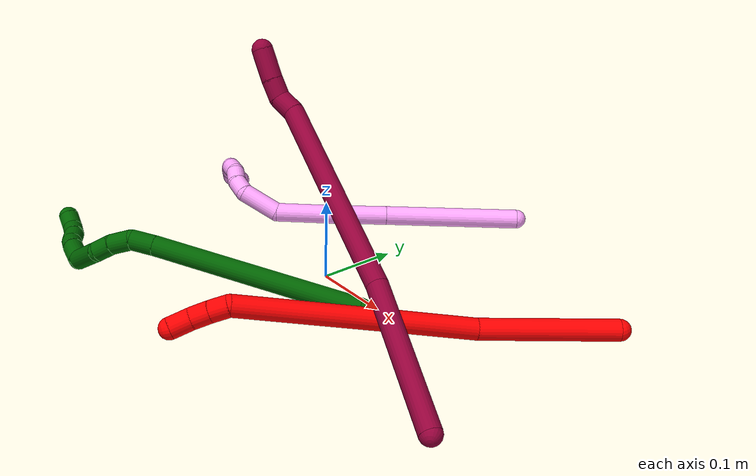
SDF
<sdf version="1.7">
 <world name="default">
  <model name="2">
   <static>0</static>
   <link name="2">
    <collision name="collision-cylinder-e_1_1_4">
     <pose>-0.025852 -0.006626 -0.073571 3.05177 -0.336645 -2.62448</pose>
     <geometry><cylinder><radius>0.0125</radius><length>0.156524</length></cylinder></geometry>
     <surface>
      <friction><ode><mu>1.16</mu><mu2>1.16</mu2><slip1>0</slip1><slip2>0</slip2></ode></friction>
      <contact><ode><kp>1e+06</kp><kd>1</kd><max_vel>0</max_vel><min_depth>0.001</min_depth></ode></contact>
     </surface>
    </collision>
    <visual name="visual-cylinder-e_1_1_4">
     <pose>-0.025852 -0.006626 -0.073571 3.05177 -0.336645 -2.62448</pose>
     <geometry><cylinder><radius>0.0125</radius><length>0.156524</length></cylinder></geometry>
     <material><ambient>1 0 0 1</ambient></material>
    </visual>
    <collision name="collision-cylinder-e_2_4_5">
     <pose>-0.06712 -0.030538 -0.196327 2.80364 -0.287523 -1.40728</pose>
     <geometry><cylinder><radius>0.0125</radius><length>0.108731</length></cylinder></geometry>
     <surface>
      <friction><ode><mu>1.16</mu><mu2>1.16</mu2><slip1>0</slip1><slip2>0</slip2></ode></friction>
      <contact><ode><kp>1e+06</kp><kd>1</kd><max_vel>0</max_vel><min_depth>0.001</min_depth></ode></contact>
     </surface>
    </collision>
    <visual name="visual-cylinder-e_2_4_5">
     <pose>-0.06712 -0.030538 -0.196327 2.80364 -0.287523 -1.40728</pose>
     <geometry><cylinder><radius>0.0125</radius><length>0.108731</length></cylinder></geometry>
     <material><ambient>1 0 0 1</ambient></material>
    </visual>
    <collision name="collision-cylinder-e_3_5_6">
     <pose>-0.105866 -0.074085 -0.320647 2.80533 -0.285122 -1.40394</pose>
     <geometry><cylinder><radius>0.0125</radius><length>0.165882</length></cylinder></geometry>
     <surface>
      <friction><ode><mu>1.16</mu><mu2>1.16</mu2><slip1>0</slip1><slip2>0</slip2></ode></friction>
      <contact><ode><kp>1e+06</kp><kd>1</kd><max_vel>0</max_vel><min_depth>0.001</min_depth></ode></contact>
     </surface>
    </collision>
    <visual name="visual-cylinder-e_3_5_6">
     <pose>-0.105866 -0.074085 -0.320647 2.80533 -0.285122 -1.40394</pose>
     <geometry><cylinder><radius>0.0125</radius><length>0.165882</length></cylinder></geometry>
     <material><ambient>1 0 0 1</ambient></material>
    </visual>
    <collision name="collision-cylinder-e_4_6_7">
     <pose>-0.130734 -0.098406 -0.40652 -2.96279 -0.140063 1.32799</pose>
     <geometry><cylinder><radius>0.0125</radius><length>0.022039</length></cylinder></geometry>
     <surface>
      <friction><ode><mu>1.16</mu><mu2>1.16</mu2><slip1>0</slip1><slip2>0</slip2></ode></friction>
      <contact><ode><kp>1e+06</kp><kd>1</kd><max_vel>0</max_vel><min_depth>0.001</min_depth></ode></contact>
     </surface>
    </collision>
    <visual name="visual-cylinder-e_4_6_7">
     <pose>-0.130734 -0.098406 -0.40652 -2.96279 -0.140063 1.32799</pose>
     <geometry><cylinder><radius>0.0125</radius><length>0.022039</length></cylinder></geometry>
     <material><ambient>1 0 0 1</ambient></material>
    </visual>
    <collision name="collision-cylinder-e_5_7_8">
     <pose>-0.133255 -0.094284 -0.427915 -2.93965 -0.090068 0.837036</pose>
     <geometry><cylinder><radius>0.0125</radius><length>0.021847</length></cylinder></geometry>
     <surface>
      <friction><ode><mu>1.16</mu><mu2>1.16</mu2><slip1>0</slip1><slip2>0</slip2></ode></friction>
      <contact><ode><kp>1e+06</kp><kd>1</kd><max_vel>0</max_vel><min_depth>0.001</min_depth></ode></contact>
     </surface>
    </collision>
    <visual name="visual-cylinder-e_5_7_8">
     <pose>-0.133255 -0.094284 -0.427915 -2.93965 -0.090068 0.837036</pose>
     <geometry><cylinder><radius>0.0125</radius><length>0.021847</length></cylinder></geometry>
     <material><ambient>1 0 0 1</ambient></material>
    </visual>
    <collision name="collision-cylinder-e_6_8_2">
     <pose>-0.133421 -0.091126 -0.450997 -3.06321 0.065439 -1.39115</pose>
     <geometry><cylinder><radius>0.0125</radius><length>0.024977</length></cylinder></geometry>
     <surface>
      <friction><ode><mu>1.16</mu><mu2>1.16</mu2><slip1>0</slip1><slip2>0</slip2></ode></friction>
      <contact><ode><kp>1e+06</kp><kd>1</kd><max_vel>0</max_vel><min_depth>0.001</min_depth></ode></contact>
     </surface>
    </collision>
    <visual name="visual-cylinder-e_6_8_2">
     <pose>-0.133421 -0.091126 -0.450997 -3.06321 0.065439 -1.39115</pose>
     <geometry><cylinder><radius>0.0125</radius><length>0.024977</length></cylinder></geometry>
     <material><ambient>1 0 0 1</ambient></material>
    </visual>
    <collision name="collision-sphere-2">
     <pose>-0.132604 -0.09015 -0.463421 0 -0 0</pose>
     <geometry><sphere><radius>0.0125</radius></sphere></geometry>
     <surface>
      <friction><ode><mu>1.16</mu><mu2>1.16</mu2><slip1>0</slip1><slip2>0</slip2></ode></friction>
      <contact><ode><kp>1e+06</kp><kd>1</kd><max_vel>0</max_vel><min_depth>0.001</min_depth></ode></contact>
     </surface>
    </collision>
    <visual name="visual-sphere-2">
     <pose>-0.132604 -0.09015 -0.463421 0 -0 0</pose>
     <geometry><sphere><radius>0.0125</radius></sphere></geometry>
     <material><ambient>1 0 0 1</ambient></material>
    </visual>
    <collision name="collision-sphere-4">
     <pose>-0.051703 -0.013253 -0.147143 0 -0 0</pose>
     <geometry><sphere><radius>0.0125</radius></sphere></geometry>
     <surface>
      <friction><ode><mu>1.16</mu><mu2>1.16</mu2><slip1>0</slip1><slip2>0</slip2></ode></friction>
      <contact><ode><kp>1e+06</kp><kd>1</kd><max_vel>0</max_vel><min_depth>0.001</min_depth></ode></contact>
     </surface>
    </collision>
    <visual name="visual-sphere-4">
     <pose>-0.051703 -0.013253 -0.147143 0 -0 0</pose>
     <geometry><sphere><radius>0.0125</radius></sphere></geometry>
     <material><ambient>1 0 0 1</ambient></material>
    </visual>
    <collision name="collision-sphere-1">
     <geometry><sphere><radius>0.0125</radius></sphere></geometry>
     <surface>
      <friction><ode><mu>1.16</mu><mu2>1.16</mu2><slip1>0</slip1><slip2>0</slip2></ode></friction>
      <contact><ode><kp>1e+06</kp><kd>1</kd><max_vel>0</max_vel><min_depth>0.001</min_depth></ode></contact>
     </surface>
    </collision>
    <visual name="visual-sphere-1">
     <geometry><sphere><radius>0.0125</radius></sphere></geometry>
     <material><ambient>1 0 0 1</ambient></material>
    </visual>
    <collision name="collision-sphere-8">
     <pose>-0.134237 -0.092102 -0.438574 0 -0 0</pose>
     <geometry><sphere><radius>0.0125</radius></sphere></geometry>
     <surface>
      <friction><ode><mu>1.16</mu><mu2>1.16</mu2><slip1>0</slip1><slip2>0</slip2></ode></friction>
      <contact><ode><kp>1e+06</kp><kd>1</kd><max_vel>0</max_vel><min_depth>0.001</min_depth></ode></contact>
     </surface>
    </collision>
    <visual name="visual-sphere-8">
     <pose>-0.134237 -0.092102 -0.438574 0 -0 0</pose>
     <geometry><sphere><radius>0.0125</radius></sphere></geometry>
     <material><ambient>1 0 0 1</ambient></material>
    </visual>
    <collision name="collision-sphere-5">
     <pose>-0.082537 -0.047823 -0.245512 0 -0 0</pose>
     <geometry><sphere><radius>0.0125</radius></sphere></geometry>
     <surface>
      <friction><ode><mu>1.16</mu><mu2>1.16</mu2><slip1>0</slip1><slip2>0</slip2></ode></friction>
      <contact><ode><kp>1e+06</kp><kd>1</kd><max_vel>0</max_vel><min_depth>0.001</min_depth></ode></contact>
     </surface>
    </collision>
    <visual name="visual-sphere-5">
     <pose>-0.082537 -0.047823 -0.245512 0 -0 0</pose>
     <geometry><sphere><radius>0.0125</radius></sphere></geometry>
     <material><ambient>1 0 0 1</ambient></material>
    </visual>
    <collision name="collision-sphere-6">
     <pose>-0.129195 -0.100347 -0.395782 0 -0 0</pose>
     <geometry><sphere><radius>0.0125</radius></sphere></geometry>
     <surface>
      <friction><ode><mu>1.16</mu><mu2>1.16</mu2><slip1>0</slip1><slip2>0</slip2></ode></friction>
      <contact><ode><kp>1e+06</kp><kd>1</kd><max_vel>0</max_vel><min_depth>0.001</min_depth></ode></contact>
     </surface>
    </collision>
    <visual name="visual-sphere-6">
     <pose>-0.129195 -0.100347 -0.395782 0 -0 0</pose>
     <geometry><sphere><radius>0.0125</radius></sphere></geometry>
     <material><ambient>1 0 0 1</ambient></material>
    </visual>
    <collision name="collision-sphere-7">
     <pose>-0.132272 -0.096466 -0.417257 0 -0 0</pose>
     <geometry><sphere><radius>0.0125</radius></sphere></geometry>
     <surface>
      <friction><ode><mu>1.16</mu><mu2>1.16</mu2><slip1>0</slip1><slip2>0</slip2></ode></friction>
      <contact><ode><kp>1e+06</kp><kd>1</kd><max_vel>0</max_vel><min_depth>0.001</min_depth></ode></contact>
     </surface>
    </collision>
    <visual name="visual-sphere-7">
     <pose>-0.132272 -0.096466 -0.417257 0 -0 0</pose>
     <geometry><sphere><radius>0.0125</radius></sphere></geometry>
     <material><ambient>1 0 0 1</ambient></material>
    </visual>
    <inertial>
     <pose>-0.076061 -0.046303 -0.231249 0 -0 0</pose>
     <mass>0.5</mass>
     <inertia>
      <ixx>-0.000819</ixx>
      <ixy>0</ixy>
      <ixz>0</ixz>
      <iyy>-0.000377</iyy>
      <iyz>0</iyz>
      <izz>0.000397</izz>
     </inertia>
    </inertial>
   </link>
   <pose>0.308834 0.171238 0.012985 -1.30212 0.455526 -0.282962</pose>
  </model>
  <model name="4">
   <static>0</static>
   <link name="4">
    <collision name="collision-cylinder-e_1_1_4">
     <pose>-0.053124 -0.054586 0.042837 0.905416 -0.653422 -0.326699</pose>
     <geometry><cylinder><radius>0.0125</radius><length>0.174777</length></cylinder></geometry>
     <surface>
      <friction><ode><mu>1.16</mu><mu2>1.16</mu2><slip1>0</slip1><slip2>0</slip2></ode></friction>
      <contact><ode><kp>1e+06</kp><kd>1</kd><max_vel>0</max_vel><min_depth>0.001</min_depth></ode></contact>
     </surface>
    </collision>
    <visual name="visual-cylinder-e_1_1_4">
     <pose>-0.053124 -0.054586 0.042837 0.905416 -0.653422 -0.326699</pose>
     <geometry><cylinder><radius>0.0125</radius><length>0.174777</length></cylinder></geometry>
     <material><ambient>1 0.65098 0.996078 1</ambient></material>
    </visual>
    <collision name="collision-cylinder-e_2_4_5">
     <pose>-0.127848 -0.131004 0.103231 0.893513 -0.656782 -0.323605</pose>
     <geometry><cylinder><radius>0.0125</radius><length>0.070752</length></cylinder></geometry>
     <surface>
      <friction><ode><mu>1.16</mu><mu2>1.16</mu2><slip1>0</slip1><slip2>0</slip2></ode></friction>
      <contact><ode><kp>1e+06</kp><kd>1</kd><max_vel>0</max_vel><min_depth>0.001</min_depth></ode></contact>
     </surface>
    </collision>
    <visual name="visual-cylinder-e_2_4_5">
     <pose>-0.127848 -0.131004 0.103231 0.893513 -0.656782 -0.323605</pose>
     <geometry><cylinder><radius>0.0125</radius><length>0.070752</length></cylinder></geometry>
     <material><ambient>1 0.65098 0.996078 1</ambient></material>
    </visual>
    <collision name="collision-cylinder-e_3_5_6">
     <pose>-0.173121 -0.178004 0.13987 0.922078 -0.64322 -0.328033</pose>
     <geometry><cylinder><radius>0.0125</radius><length>0.078941</length></cylinder></geometry>
     <surface>
      <friction><ode><mu>1.16</mu><mu2>1.16</mu2><slip1>0</slip1><slip2>0</slip2></ode></friction>
      <contact><ode><kp>1e+06</kp><kd>1</kd><max_vel>0</max_vel><min_depth>0.001</min_depth></ode></contact>
     </surface>
    </collision>
    <visual name="visual-cylinder-e_3_5_6">
     <pose>-0.173121 -0.178004 0.13987 0.922078 -0.64322 -0.328033</pose>
     <geometry><cylinder><radius>0.0125</radius><length>0.078941</length></cylinder></geometry>
     <material><ambient>1 0.65098 0.996078 1</ambient></material>
    </visual>
    <collision name="collision-cylinder-e_4_6_7">
     <pose>-0.211986 -0.224588 0.159493 1.54551 -0.616805 -0.602327</pose>
     <geometry><cylinder><radius>0.0125</radius><length>0.052526</length></cylinder></geometry>
     <surface>
      <friction><ode><mu>1.16</mu><mu2>1.16</mu2><slip1>0</slip1><slip2>0</slip2></ode></friction>
      <contact><ode><kp>1e+06</kp><kd>1</kd><max_vel>0</max_vel><min_depth>0.001</min_depth></ode></contact>
     </surface>
    </collision>
    <visual name="visual-cylinder-e_4_6_7">
     <pose>-0.211986 -0.224588 0.159493 1.54551 -0.616805 -0.602327</pose>
     <geometry><cylinder><radius>0.0125</radius><length>0.052526</length></cylinder></geometry>
     <material><ambient>1 0.65098 0.996078 1</ambient></material>
    </visual>
    <collision name="collision-cylinder-e_5_7_8">
     <pose>-0.227869 -0.257155 0.157932 1.7572 -0.060901 -0.07345</pose>
     <geometry><cylinder><radius>0.0125</radius><length>0.022735</length></cylinder></geometry>
     <surface>
      <friction><ode><mu>1.16</mu><mu2>1.16</mu2><slip1>0</slip1><slip2>0</slip2></ode></friction>
      <contact><ode><kp>1e+06</kp><kd>1</kd><max_vel>0</max_vel><min_depth>0.001</min_depth></ode></contact>
     </surface>
    </collision>
    <visual name="visual-cylinder-e_5_7_8">
     <pose>-0.227869 -0.257155 0.157932 1.7572 -0.060901 -0.07345</pose>
     <geometry><cylinder><radius>0.0125</radius><length>0.022735</length></cylinder></geometry>
     <material><ambient>1 0.65098 0.996078 1</ambient></material>
    </visual>
    <collision name="collision-cylinder-e_6_8_9">
     <pose>-0.225994 -0.277311 0.152054 1.96765 0.257071 0.38383</pose>
     <geometry><cylinder><radius>0.0125</radius><length>0.020195</length></cylinder></geometry>
     <surface>
      <friction><ode><mu>1.16</mu><mu2>1.16</mu2><slip1>0</slip1><slip2>0</slip2></ode></friction>
      <contact><ode><kp>1e+06</kp><kd>1</kd><max_vel>0</max_vel><min_depth>0.001</min_depth></ode></contact>
     </surface>
    </collision>
    <visual name="visual-cylinder-e_6_8_9">
     <pose>-0.225994 -0.277311 0.152054 1.96765 0.257071 0.38383</pose>
     <geometry><cylinder><radius>0.0125</radius><length>0.020195</length></cylinder></geometry>
     <material><ambient>1 0.65098 0.996078 1</ambient></material>
    </visual>
    <collision name="collision-cylinder-e_7_9_10">
     <pose>-0.220584 -0.295912 0.148544 1.54327 0.2879 0.280184</pose>
     <geometry><cylinder><radius>0.0125</radius><length>0.02002</length></cylinder></geometry>
     <surface>
      <friction><ode><mu>1.16</mu><mu2>1.16</mu2><slip1>0</slip1><slip2>0</slip2></ode></friction>
      <contact><ode><kp>1e+06</kp><kd>1</kd><max_vel>0</max_vel><min_depth>0.001</min_depth></ode></contact>
     </surface>
    </collision>
    <visual name="visual-cylinder-e_7_9_10">
     <pose>-0.220584 -0.295912 0.148544 1.54327 0.2879 0.280184</pose>
     <geometry><cylinder><radius>0.0125</radius><length>0.02002</length></cylinder></geometry>
     <material><ambient>1 0.65098 0.996078 1</ambient></material>
    </visual>
    <collision name="collision-cylinder-e_8_10_11">
     <pose>-0.210703 -0.310888 0.153491 0.854761 0.778671 0.369465</pose>
     <geometry><cylinder><radius>0.0125</radius><length>0.020045</length></cylinder></geometry>
     <surface>
      <friction><ode><mu>1.16</mu><mu2>1.16</mu2><slip1>0</slip1><slip2>0</slip2></ode></friction>
      <contact><ode><kp>1e+06</kp><kd>1</kd><max_vel>0</max_vel><min_depth>0.001</min_depth></ode></contact>
     </surface>
    </collision>
    <visual name="visual-cylinder-e_8_10_11">
     <pose>-0.210703 -0.310888 0.153491 0.854761 0.778671 0.369465</pose>
     <geometry><cylinder><radius>0.0125</radius><length>0.020045</length></cylinder></geometry>
     <material><ambient>1 0.65098 0.996078 1</ambient></material>
    </visual>
    <collision name="collision-cylinder-e_9_11_12">
     <pose>-0.196104 -0.320436 0.163224 0.689771 0.857123 0.325362</pose>
     <geometry><cylinder><radius>0.0125</radius><length>0.02</length></cylinder></geometry>
     <surface>
      <friction><ode><mu>1.16</mu><mu2>1.16</mu2><slip1>0</slip1><slip2>0</slip2></ode></friction>
      <contact><ode><kp>1e+06</kp><kd>1</kd><max_vel>0</max_vel><min_depth>0.001</min_depth></ode></contact>
     </surface>
    </collision>
    <visual name="visual-cylinder-e_9_11_12">
     <pose>-0.196104 -0.320436 0.163224 0.689771 0.857123 0.325362</pose>
     <geometry><cylinder><radius>0.0125</radius><length>0.02</length></cylinder></geometry>
     <material><ambient>1 0.65098 0.996078 1</ambient></material>
    </visual>
    <collision name="collision-cylinder-e_10_12_2">
     <pose>-0.178605 -0.325483 0.16899 0.887547 1.45705 0.802352</pose>
     <geometry><cylinder><radius>0.0125</radius><length>0.020009</length></cylinder></geometry>
     <surface>
      <friction><ode><mu>1.16</mu><mu2>1.16</mu2><slip1>0</slip1><slip2>0</slip2></ode></friction>
      <contact><ode><kp>1e+06</kp><kd>1</kd><max_vel>0</max_vel><min_depth>0.001</min_depth></ode></contact>
     </surface>
    </collision>
    <visual name="visual-cylinder-e_10_12_2">
     <pose>-0.178605 -0.325483 0.16899 0.887547 1.45705 0.802352</pose>
     <geometry><cylinder><radius>0.0125</radius><length>0.020009</length></cylinder></geometry>
     <material><ambient>1 0.65098 0.996078 1</ambient></material>
    </visual>
    <collision name="collision-sphere-2">
     <pose>-0.168665 -0.326363 0.169707 0 -0 0</pose>
     <geometry><sphere><radius>0.0125</radius></sphere></geometry>
     <surface>
      <friction><ode><mu>1.16</mu><mu2>1.16</mu2><slip1>0</slip1><slip2>0</slip2></ode></friction>
      <contact><ode><kp>1e+06</kp><kd>1</kd><max_vel>0</max_vel><min_depth>0.001</min_depth></ode></contact>
     </surface>
    </collision>
    <visual name="visual-sphere-2">
     <pose>-0.168665 -0.326363 0.169707 0 -0 0</pose>
     <geometry><sphere><radius>0.0125</radius></sphere></geometry>
     <material><ambient>1 0.65098 0.996078 1</ambient></material>
    </visual>
    <collision name="collision-sphere-12">
     <pose>-0.188544 -0.324602 0.168273 0 -0 0</pose>
     <geometry><sphere><radius>0.0125</radius></sphere></geometry>
     <surface>
      <friction><ode><mu>1.16</mu><mu2>1.16</mu2><slip1>0</slip1><slip2>0</slip2></ode></friction>
      <contact><ode><kp>1e+06</kp><kd>1</kd><max_vel>0</max_vel><min_depth>0.001</min_depth></ode></contact>
     </surface>
    </collision>
    <visual name="visual-sphere-12">
     <pose>-0.188544 -0.324602 0.168273 0 -0 0</pose>
     <geometry><sphere><radius>0.0125</radius></sphere></geometry>
     <material><ambient>1 0.65098 0.996078 1</ambient></material>
    </visual>
    <collision name="collision-sphere-11">
     <pose>-0.203664 -0.316271 0.158174 0 -0 0</pose>
     <geometry><sphere><radius>0.0125</radius></sphere></geometry>
     <surface>
      <friction><ode><mu>1.16</mu><mu2>1.16</mu2><slip1>0</slip1><slip2>0</slip2></ode></friction>
      <contact><ode><kp>1e+06</kp><kd>1</kd><max_vel>0</max_vel><min_depth>0.001</min_depth></ode></contact>
     </surface>
    </collision>
    <visual name="visual-sphere-11">
     <pose>-0.203664 -0.316271 0.158174 0 -0 0</pose>
     <geometry><sphere><radius>0.0125</radius></sphere></geometry>
     <material><ambient>1 0.65098 0.996078 1</ambient></material>
    </visual>
    <collision name="collision-sphere-10">
     <pose>-0.217742 -0.305506 0.148808 0 -0 0</pose>
     <geometry><sphere><radius>0.0125</radius></sphere></geometry>
     <surface>
      <friction><ode><mu>1.16</mu><mu2>1.16</mu2><slip1>0</slip1><slip2>0</slip2></ode></friction>
      <contact><ode><kp>1e+06</kp><kd>1</kd><max_vel>0</max_vel><min_depth>0.001</min_depth></ode></contact>
     </surface>
    </collision>
    <visual name="visual-sphere-10">
     <pose>-0.217742 -0.305506 0.148808 0 -0 0</pose>
     <geometry><sphere><radius>0.0125</radius></sphere></geometry>
     <material><ambient>1 0.65098 0.996078 1</ambient></material>
    </visual>
    <collision name="collision-sphere-9">
     <pose>-0.223426 -0.286318 0.14828 0 -0 0</pose>
     <geometry><sphere><radius>0.0125</radius></sphere></geometry>
     <surface>
      <friction><ode><mu>1.16</mu><mu2>1.16</mu2><slip1>0</slip1><slip2>0</slip2></ode></friction>
      <contact><ode><kp>1e+06</kp><kd>1</kd><max_vel>0</max_vel><min_depth>0.001</min_depth></ode></contact>
     </surface>
    </collision>
    <visual name="visual-sphere-9">
     <pose>-0.223426 -0.286318 0.14828 0 -0 0</pose>
     <geometry><sphere><radius>0.0125</radius></sphere></geometry>
     <material><ambient>1 0.65098 0.996078 1</ambient></material>
    </visual>
    <collision name="collision-sphere-4">
     <pose>-0.106248 -0.109171 0.085674 0 -0 0</pose>
     <geometry><sphere><radius>0.0125</radius></sphere></geometry>
     <surface>
      <friction><ode><mu>1.16</mu><mu2>1.16</mu2><slip1>0</slip1><slip2>0</slip2></ode></friction>
      <contact><ode><kp>1e+06</kp><kd>1</kd><max_vel>0</max_vel><min_depth>0.001</min_depth></ode></contact>
     </surface>
    </collision>
    <visual name="visual-sphere-4">
     <pose>-0.106248 -0.109171 0.085674 0 -0 0</pose>
     <geometry><sphere><radius>0.0125</radius></sphere></geometry>
     <material><ambient>1 0.65098 0.996078 1</ambient></material>
    </visual>
    <collision name="collision-sphere-1">
     <geometry><sphere><radius>0.0125</radius></sphere></geometry>
     <surface>
      <friction><ode><mu>1.16</mu><mu2>1.16</mu2><slip1>0</slip1><slip2>0</slip2></ode></friction>
      <contact><ode><kp>1e+06</kp><kd>1</kd><max_vel>0</max_vel><min_depth>0.001</min_depth></ode></contact>
     </surface>
    </collision>
    <visual name="visual-sphere-1">
     <geometry><sphere><radius>0.0125</radius></sphere></geometry>
     <material><ambient>1 0.65098 0.996078 1</ambient></material>
    </visual>
    <collision name="collision-sphere-8">
     <pose>-0.228561 -0.268304 0.155829 0 -0 0</pose>
     <geometry><sphere><radius>0.0125</radius></sphere></geometry>
     <surface>
      <friction><ode><mu>1.16</mu><mu2>1.16</mu2><slip1>0</slip1><slip2>0</slip2></ode></friction>
      <contact><ode><kp>1e+06</kp><kd>1</kd><max_vel>0</max_vel><min_depth>0.001</min_depth></ode></contact>
     </surface>
    </collision>
    <visual name="visual-sphere-8">
     <pose>-0.228561 -0.268304 0.155829 0 -0 0</pose>
     <geometry><sphere><radius>0.0125</radius></sphere></geometry>
     <material><ambient>1 0.65098 0.996078 1</ambient></material>
    </visual>
    <collision name="collision-sphere-5">
     <pose>-0.149447 -0.152836 0.120788 0 -0 0</pose>
     <geometry><sphere><radius>0.0125</radius></sphere></geometry>
     <surface>
      <friction><ode><mu>1.16</mu><mu2>1.16</mu2><slip1>0</slip1><slip2>0</slip2></ode></friction>
      <contact><ode><kp>1e+06</kp><kd>1</kd><max_vel>0</max_vel><min_depth>0.001</min_depth></ode></contact>
     </surface>
    </collision>
    <visual name="visual-sphere-5">
     <pose>-0.149447 -0.152836 0.120788 0 -0 0</pose>
     <geometry><sphere><radius>0.0125</radius></sphere></geometry>
     <material><ambient>1 0.65098 0.996078 1</ambient></material>
    </visual>
    <collision name="collision-sphere-6">
     <pose>-0.196794 -0.203171 0.158951 0 -0 0</pose>
     <geometry><sphere><radius>0.0125</radius></sphere></geometry>
     <surface>
      <friction><ode><mu>1.16</mu><mu2>1.16</mu2><slip1>0</slip1><slip2>0</slip2></ode></friction>
      <contact><ode><kp>1e+06</kp><kd>1</kd><max_vel>0</max_vel><min_depth>0.001</min_depth></ode></contact>
     </surface>
    </collision>
    <visual name="visual-sphere-6">
     <pose>-0.196794 -0.203171 0.158951 0 -0 0</pose>
     <geometry><sphere><radius>0.0125</radius></sphere></geometry>
     <material><ambient>1 0.65098 0.996078 1</ambient></material>
    </visual>
    <collision name="collision-sphere-7">
     <pose>-0.227177 -0.246005 0.160034 0 -0 0</pose>
     <geometry><sphere><radius>0.0125</radius></sphere></geometry>
     <surface>
      <friction><ode><mu>1.16</mu><mu2>1.16</mu2><slip1>0</slip1><slip2>0</slip2></ode></friction>
      <contact><ode><kp>1e+06</kp><kd>1</kd><max_vel>0</max_vel><min_depth>0.001</min_depth></ode></contact>
     </surface>
    </collision>
    <visual name="visual-sphere-7">
     <pose>-0.227177 -0.246005 0.160034 0 -0 0</pose>
     <geometry><sphere><radius>0.0125</radius></sphere></geometry>
     <material><ambient>1 0.65098 0.996078 1</ambient></material>
    </visual>
    <inertial>
     <pose>-0.138023 -0.162363 0.107135 0 -0 0</pose>
     <mass>0.5</mass>
     <inertia>
      <ixx>0.000261</ixx>
      <ixy>0</ixy>
      <ixz>0</ixz>
      <iyy>0.000233</iyy>
      <iyz>0</iyz>
      <izz>0.000686</izz>
     </inertia>
    </inertial>
   </link>
   <pose>0.044197 0.288337 0.012408 -2.93012 0.519127 1.65856</pose>
  </model>
  <model name="6">
   <static>0</static>
   <link name="6">
    <collision name="collision-cylinder-e_1_1_4">
     <pose>-0.035264 -0.033447 0.11987 0.272107 -0.276126 -0.038039</pose>
     <geometry><cylinder><radius>0.0125</radius><length>0.258697</length></cylinder></geometry>
     <surface>
      <friction><ode><mu>1.16</mu><mu2>1.16</mu2><slip1>0</slip1><slip2>0</slip2></ode></friction>
      <contact><ode><kp>1e+06</kp><kd>1</kd><max_vel>0</max_vel><min_depth>0.001</min_depth></ode></contact>
     </surface>
    </collision>
    <visual name="visual-cylinder-e_1_1_4">
     <pose>-0.035264 -0.033447 0.11987 0.272107 -0.276126 -0.038039</pose>
     <geometry><cylinder><radius>0.0125</radius><length>0.258697</length></cylinder></geometry>
     <material><ambient>0 0.392157 0.003922 1</ambient></material>
    </visual>
    <collision name="collision-cylinder-e_2_4_5">
     <pose>-0.074753 -0.070011 0.253596 0.22126 -0.289098 -0.032337</pose>
     <geometry><cylinder><radius>0.0125</radius><length>0.029635</length></cylinder></geometry>
     <surface>
      <friction><ode><mu>1.16</mu><mu2>1.16</mu2><slip1>0</slip1><slip2>0</slip2></ode></friction>
      <contact><ode><kp>1e+06</kp><kd>1</kd><max_vel>0</max_vel><min_depth>0.001</min_depth></ode></contact>
     </surface>
    </collision>
    <visual name="visual-cylinder-e_2_4_5">
     <pose>-0.074753 -0.070011 0.253596 0.22126 -0.289098 -0.032337</pose>
     <geometry><cylinder><radius>0.0125</radius><length>0.029635</length></cylinder></geometry>
     <material><ambient>0 0.392157 0.003922 1</ambient></material>
    </visual>
    <collision name="collision-cylinder-e_3_5_6">
     <pose>-0.079038 -0.071046 0.280937 -0.15319 -0.004445 0.000341</pose>
     <geometry><cylinder><radius>0.0125</radius><length>0.027289</length></cylinder></geometry>
     <surface>
      <friction><ode><mu>1.16</mu><mu2>1.16</mu2><slip1>0</slip1><slip2>0</slip2></ode></friction>
      <contact><ode><kp>1e+06</kp><kd>1</kd><max_vel>0</max_vel><min_depth>0.001</min_depth></ode></contact>
     </surface>
    </collision>
    <visual name="visual-cylinder-e_3_5_6">
     <pose>-0.079038 -0.071046 0.280937 -0.15319 -0.004445 0.000341</pose>
     <geometry><cylinder><radius>0.0125</radius><length>0.027289</length></cylinder></geometry>
     <material><ambient>0 0.392157 0.003922 1</ambient></material>
    </visual>
    <collision name="collision-cylinder-e_4_6_7">
     <pose>-0.077782 -0.065528 0.304865 -0.317842 0.119193 -0.019125</pose>
     <geometry><cylinder><radius>0.0125</radius><length>0.022146</length></cylinder></geometry>
     <surface>
      <friction><ode><mu>1.16</mu><mu2>1.16</mu2><slip1>0</slip1><slip2>0</slip2></ode></friction>
      <contact><ode><kp>1e+06</kp><kd>1</kd><max_vel>0</max_vel><min_depth>0.001</min_depth></ode></contact>
     </surface>
    </collision>
    <visual name="visual-cylinder-e_4_6_7">
     <pose>-0.077782 -0.065528 0.304865 -0.317842 0.119193 -0.019125</pose>
     <geometry><cylinder><radius>0.0125</radius><length>0.022146</length></cylinder></geometry>
     <material><ambient>0 0.392157 0.003922 1</ambient></material>
    </visual>
    <collision name="collision-cylinder-e_5_7_8">
     <pose>-0.063843 -0.062966 0.336587 0.041048 0.53502 0.011252</pose>
     <geometry><cylinder><radius>0.0125</radius><length>0.049512</length></cylinder></geometry>
     <surface>
      <friction><ode><mu>1.16</mu><mu2>1.16</mu2><slip1>0</slip1><slip2>0</slip2></ode></friction>
      <contact><ode><kp>1e+06</kp><kd>1</kd><max_vel>0</max_vel><min_depth>0.001</min_depth></ode></contact>
     </surface>
    </collision>
    <visual name="visual-cylinder-e_5_7_8">
     <pose>-0.063843 -0.062966 0.336587 0.041048 0.53502 0.011252</pose>
     <geometry><cylinder><radius>0.0125</radius><length>0.049512</length></cylinder></geometry>
     <material><ambient>0 0.392157 0.003922 1</ambient></material>
    </visual>
    <collision name="collision-cylinder-e_6_8_9">
     <pose>-0.04525 -0.07493 0.368112 0.824909 0.376607 0.166376</pose>
     <geometry><cylinder><radius>0.0125</radius><length>0.032474</length></cylinder></geometry>
     <surface>
      <friction><ode><mu>1.16</mu><mu2>1.16</mu2><slip1>0</slip1><slip2>0</slip2></ode></friction>
      <contact><ode><kp>1e+06</kp><kd>1</kd><max_vel>0</max_vel><min_depth>0.001</min_depth></ode></contact>
     </surface>
    </collision>
    <visual name="visual-cylinder-e_6_8_9">
     <pose>-0.04525 -0.07493 0.368112 0.824909 0.376607 0.166376</pose>
     <geometry><cylinder><radius>0.0125</radius><length>0.032474</length></cylinder></geometry>
     <material><ambient>0 0.392157 0.003922 1</ambient></material>
    </visual>
    <collision name="collision-cylinder-e_7_9_10">
     <pose>-0.033989 -0.092272 0.384115 0.826688 0.556704 0.249385</pose>
     <geometry><cylinder><radius>0.0125</radius><length>0.02002</length></cylinder></geometry>
     <surface>
      <friction><ode><mu>1.16</mu><mu2>1.16</mu2><slip1>0</slip1><slip2>0</slip2></ode></friction>
      <contact><ode><kp>1e+06</kp><kd>1</kd><max_vel>0</max_vel><min_depth>0.001</min_depth></ode></contact>
     </surface>
    </collision>
    <visual name="visual-cylinder-e_7_9_10">
     <pose>-0.033989 -0.092272 0.384115 0.826688 0.556704 0.249385</pose>
     <geometry><cylinder><radius>0.0125</radius><length>0.02002</length></cylinder></geometry>
     <material><ambient>0 0.392157 0.003922 1</ambient></material>
    </visual>
    <collision name="collision-cylinder-e_8_10_11">
     <pose>-0.022966 -0.106144 0.393155 1.16382 0.604745 0.404826</pose>
     <geometry><cylinder><radius>0.0125</radius><length>0.020172</length></cylinder></geometry>
     <surface>
      <friction><ode><mu>1.16</mu><mu2>1.16</mu2><slip1>0</slip1><slip2>0</slip2></ode></friction>
      <contact><ode><kp>1e+06</kp><kd>1</kd><max_vel>0</max_vel><min_depth>0.001</min_depth></ode></contact>
     </surface>
    </collision>
    <visual name="visual-cylinder-e_8_10_11">
     <pose>-0.022966 -0.106144 0.393155 1.16382 0.604745 0.404826</pose>
     <geometry><cylinder><radius>0.0125</radius><length>0.020172</length></cylinder></geometry>
     <material><ambient>0 0.392157 0.003922 1</ambient></material>
    </visual>
    <collision name="collision-cylinder-e_9_11_12">
     <pose>-0.012513 -0.120662 0.401953 0.896509 0.490679 0.239667</pose>
     <geometry><cylinder><radius>0.0125</radius><length>0.020025</length></cylinder></geometry>
     <surface>
      <friction><ode><mu>1.16</mu><mu2>1.16</mu2><slip1>0</slip1><slip2>0</slip2></ode></friction>
      <contact><ode><kp>1e+06</kp><kd>1</kd><max_vel>0</max_vel><min_depth>0.001</min_depth></ode></contact>
     </surface>
    </collision>
    <visual name="visual-cylinder-e_9_11_12">
     <pose>-0.012513 -0.120662 0.401953 0.896509 0.490679 0.239667</pose>
     <geometry><cylinder><radius>0.0125</radius><length>0.020025</length></cylinder></geometry>
     <material><ambient>0 0.392157 0.003922 1</ambient></material>
    </visual>
    <collision name="collision-cylinder-e_10_12_2">
     <pose>-0.007656 -0.136339 0.412286 1.06878 0.013876 0.008212</pose>
     <geometry><cylinder><radius>0.0125</radius><length>0.020031</length></cylinder></geometry>
     <surface>
      <friction><ode><mu>1.16</mu><mu2>1.16</mu2><slip1>0</slip1><slip2>0</slip2></ode></friction>
      <contact><ode><kp>1e+06</kp><kd>1</kd><max_vel>0</max_vel><min_depth>0.001</min_depth></ode></contact>
     </surface>
    </collision>
    <visual name="visual-cylinder-e_10_12_2">
     <pose>-0.007656 -0.136339 0.412286 1.06878 0.013876 0.008212</pose>
     <geometry><cylinder><radius>0.0125</radius><length>0.020031</length></cylinder></geometry>
     <material><ambient>0 0.392157 0.003922 1</ambient></material>
    </visual>
    <collision name="collision-sphere-2">
     <pose>-0.007517 -0.145118 0.417105 0 -0 0</pose>
     <geometry><sphere><radius>0.0125</radius></sphere></geometry>
     <surface>
      <friction><ode><mu>1.16</mu><mu2>1.16</mu2><slip1>0</slip1><slip2>0</slip2></ode></friction>
      <contact><ode><kp>1e+06</kp><kd>1</kd><max_vel>0</max_vel><min_depth>0.001</min_depth></ode></contact>
     </surface>
    </collision>
    <visual name="visual-sphere-2">
     <pose>-0.007517 -0.145118 0.417105 0 -0 0</pose>
     <geometry><sphere><radius>0.0125</radius></sphere></geometry>
     <material><ambient>0 0.392157 0.003922 1</ambient></material>
    </visual>
    <collision name="collision-sphere-12">
     <pose>-0.007795 -0.12756 0.407467 0 -0 0</pose>
     <geometry><sphere><radius>0.0125</radius></sphere></geometry>
     <surface>
      <friction><ode><mu>1.16</mu><mu2>1.16</mu2><slip1>0</slip1><slip2>0</slip2></ode></friction>
      <contact><ode><kp>1e+06</kp><kd>1</kd><max_vel>0</max_vel><min_depth>0.001</min_depth></ode></contact>
     </surface>
    </collision>
    <visual name="visual-sphere-12">
     <pose>-0.007795 -0.12756 0.407467 0 -0 0</pose>
     <geometry><sphere><radius>0.0125</radius></sphere></geometry>
     <material><ambient>0 0.392157 0.003922 1</ambient></material>
    </visual>
    <collision name="collision-sphere-11">
     <pose>-0.017231 -0.113763 0.39644 0 -0 0</pose>
     <geometry><sphere><radius>0.0125</radius></sphere></geometry>
     <surface>
      <friction><ode><mu>1.16</mu><mu2>1.16</mu2><slip1>0</slip1><slip2>0</slip2></ode></friction>
      <contact><ode><kp>1e+06</kp><kd>1</kd><max_vel>0</max_vel><min_depth>0.001</min_depth></ode></contact>
     </surface>
    </collision>
    <visual name="visual-sphere-11">
     <pose>-0.017231 -0.113763 0.39644 0 -0 0</pose>
     <geometry><sphere><radius>0.0125</radius></sphere></geometry>
     <material><ambient>0 0.392157 0.003922 1</ambient></material>
    </visual>
    <collision name="collision-sphere-10">
     <pose>-0.0287 -0.098525 0.389871 0 -0 0</pose>
     <geometry><sphere><radius>0.0125</radius></sphere></geometry>
     <surface>
      <friction><ode><mu>1.16</mu><mu2>1.16</mu2><slip1>0</slip1><slip2>0</slip2></ode></friction>
      <contact><ode><kp>1e+06</kp><kd>1</kd><max_vel>0</max_vel><min_depth>0.001</min_depth></ode></contact>
     </surface>
    </collision>
    <visual name="visual-sphere-10">
     <pose>-0.0287 -0.098525 0.389871 0 -0 0</pose>
     <geometry><sphere><radius>0.0125</radius></sphere></geometry>
     <material><ambient>0 0.392157 0.003922 1</ambient></material>
    </visual>
    <collision name="collision-sphere-9">
     <pose>-0.039278 -0.08602 0.378359 0 -0 0</pose>
     <geometry><sphere><radius>0.0125</radius></sphere></geometry>
     <surface>
      <friction><ode><mu>1.16</mu><mu2>1.16</mu2><slip1>0</slip1><slip2>0</slip2></ode></friction>
      <contact><ode><kp>1e+06</kp><kd>1</kd><max_vel>0</max_vel><min_depth>0.001</min_depth></ode></contact>
     </surface>
    </collision>
    <visual name="visual-sphere-9">
     <pose>-0.039278 -0.08602 0.378359 0 -0 0</pose>
     <geometry><sphere><radius>0.0125</radius></sphere></geometry>
     <material><ambient>0 0.392157 0.003922 1</ambient></material>
    </visual>
    <collision name="collision-sphere-4">
     <pose>-0.070529 -0.066894 0.239739 0 -0 0</pose>
     <geometry><sphere><radius>0.0125</radius></sphere></geometry>
     <surface>
      <friction><ode><mu>1.16</mu><mu2>1.16</mu2><slip1>0</slip1><slip2>0</slip2></ode></friction>
      <contact><ode><kp>1e+06</kp><kd>1</kd><max_vel>0</max_vel><min_depth>0.001</min_depth></ode></contact>
     </surface>
    </collision>
    <visual name="visual-sphere-4">
     <pose>-0.070529 -0.066894 0.239739 0 -0 0</pose>
     <geometry><sphere><radius>0.0125</radius></sphere></geometry>
     <material><ambient>0 0.392157 0.003922 1</ambient></material>
    </visual>
    <collision name="collision-sphere-1">
     <geometry><sphere><radius>0.0125</radius></sphere></geometry>
     <surface>
      <friction><ode><mu>1.16</mu><mu2>1.16</mu2><slip1>0</slip1><slip2>0</slip2></ode></friction>
      <contact><ode><kp>1e+06</kp><kd>1</kd><max_vel>0</max_vel><min_depth>0.001</min_depth></ode></contact>
     </surface>
    </collision>
    <visual name="visual-sphere-1">
     <geometry><sphere><radius>0.0125</radius></sphere></geometry>
     <material><ambient>0 0.392157 0.003922 1</ambient></material>
    </visual>
    <collision name="collision-sphere-8">
     <pose>-0.051221 -0.06384 0.357866 0 -0 0</pose>
     <geometry><sphere><radius>0.0125</radius></sphere></geometry>
     <surface>
      <friction><ode><mu>1.16</mu><mu2>1.16</mu2><slip1>0</slip1><slip2>0</slip2></ode></friction>
      <contact><ode><kp>1e+06</kp><kd>1</kd><max_vel>0</max_vel><min_depth>0.001</min_depth></ode></contact>
     </surface>
    </collision>
    <visual name="visual-sphere-8">
     <pose>-0.051221 -0.06384 0.357866 0 -0 0</pose>
     <geometry><sphere><radius>0.0125</radius></sphere></geometry>
     <material><ambient>0 0.392157 0.003922 1</ambient></material>
    </visual>
    <collision name="collision-sphere-5">
     <pose>-0.078977 -0.073128 0.267452 0 -0 0</pose>
     <geometry><sphere><radius>0.0125</radius></sphere></geometry>
     <surface>
      <friction><ode><mu>1.16</mu><mu2>1.16</mu2><slip1>0</slip1><slip2>0</slip2></ode></friction>
      <contact><ode><kp>1e+06</kp><kd>1</kd><max_vel>0</max_vel><min_depth>0.001</min_depth></ode></contact>
     </surface>
    </collision>
    <visual name="visual-sphere-5">
     <pose>-0.078977 -0.073128 0.267452 0 -0 0</pose>
     <geometry><sphere><radius>0.0125</radius></sphere></geometry>
     <material><ambient>0 0.392157 0.003922 1</ambient></material>
    </visual>
    <collision name="collision-sphere-6">
     <pose>-0.079099 -0.068964 0.294421 0 -0 0</pose>
     <geometry><sphere><radius>0.0125</radius></sphere></geometry>
     <surface>
      <friction><ode><mu>1.16</mu><mu2>1.16</mu2><slip1>0</slip1><slip2>0</slip2></ode></friction>
      <contact><ode><kp>1e+06</kp><kd>1</kd><max_vel>0</max_vel><min_depth>0.001</min_depth></ode></contact>
     </surface>
    </collision>
    <visual name="visual-sphere-6">
     <pose>-0.079099 -0.068964 0.294421 0 -0 0</pose>
     <geometry><sphere><radius>0.0125</radius></sphere></geometry>
     <material><ambient>0 0.392157 0.003922 1</ambient></material>
    </visual>
    <collision name="collision-sphere-7">
     <pose>-0.076465 -0.062092 0.315308 0 -0 0</pose>
     <geometry><sphere><radius>0.0125</radius></sphere></geometry>
     <surface>
      <friction><ode><mu>1.16</mu><mu2>1.16</mu2><slip1>0</slip1><slip2>0</slip2></ode></friction>
      <contact><ode><kp>1e+06</kp><kd>1</kd><max_vel>0</max_vel><min_depth>0.001</min_depth></ode></contact>
     </surface>
    </collision>
    <visual name="visual-sphere-7">
     <pose>-0.076465 -0.062092 0.315308 0 -0 0</pose>
     <geometry><sphere><radius>0.0125</radius></sphere></geometry>
     <material><ambient>0 0.392157 0.003922 1</ambient></material>
    </visual>
    <inertial>
     <pose>-0.042791 -0.057608 0.226981 0 -0 0</pose>
     <mass>0.5</mass>
     <inertia>
      <ixx>0.001372</ixx>
      <ixy>0</ixy>
      <ixz>0</ixz>
      <iyy>0.001366</iyy>
      <iyz>0</iyz>
      <izz>0.000802</izz>
     </inertia>
    </inertial>
   </link>
   <pose>0.10067 -0.025787 0.011234 -1.88695 0.790333 1.97815</pose>
  </model>
  <model name="8">
   <static>0</static>
   <link name="8">
    <collision name="collision-cylinder-e_1_1_4">
     <pose>0.019184 0.03941 -0.075162 -2.65867 0.222312 -0.851078</pose>
     <geometry><cylinder><radius>0.0125</radius><length>0.174018</length></cylinder></geometry>
     <surface>
      <friction><ode><mu>1.16</mu><mu2>1.16</mu2><slip1>0</slip1><slip2>0</slip2></ode></friction>
      <contact><ode><kp>1e+06</kp><kd>1</kd><max_vel>0</max_vel><min_depth>0.001</min_depth></ode></contact>
     </surface>
    </collision>
    <visual name="visual-cylinder-e_1_1_4">
     <pose>0.019184 0.03941 -0.075162 -2.65867 0.222312 -0.851078</pose>
     <geometry><cylinder><radius>0.0125</radius><length>0.174018</length></cylinder></geometry>
     <material><ambient>0.584314 0 0.227451 1</ambient></material>
    </visual>
    <collision name="collision-cylinder-e_2_4_5">
     <pose>0.071914 0.148732 -0.243085 -2.49574 0.281146 -0.800111</pose>
     <geometry><cylinder><radius>0.0125</radius><length>0.241805</length></cylinder></geometry>
     <surface>
      <friction><ode><mu>1.16</mu><mu2>1.16</mu2><slip1>0</slip1><slip2>0</slip2></ode></friction>
      <contact><ode><kp>1e+06</kp><kd>1</kd><max_vel>0</max_vel><min_depth>0.001</min_depth></ode></contact>
     </surface>
    </collision>
    <visual name="visual-cylinder-e_2_4_5">
     <pose>0.071914 0.148732 -0.243085 -2.49574 0.281146 -0.800111</pose>
     <geometry><cylinder><radius>0.0125</radius><length>0.241805</length></cylinder></geometry>
     <material><ambient>0.584314 0 0.227451 1</ambient></material>
    </visual>
    <collision name="collision-cylinder-e_3_5_6">
     <pose>0.107997 0.228928 -0.342216 -2.12551 0.20684 -0.368585</pose>
     <geometry><cylinder><radius>0.0125</radius><length>0.024722</length></cylinder></geometry>
     <surface>
      <friction><ode><mu>1.16</mu><mu2>1.16</mu2><slip1>0</slip1><slip2>0</slip2></ode></friction>
      <contact><ode><kp>1e+06</kp><kd>1</kd><max_vel>0</max_vel><min_depth>0.001</min_depth></ode></contact>
     </surface>
    </collision>
    <visual name="visual-cylinder-e_3_5_6">
     <pose>0.107997 0.228928 -0.342216 -2.12551 0.20684 -0.368585</pose>
     <geometry><cylinder><radius>0.0125</radius><length>0.024722</length></cylinder></geometry>
     <material><ambient>0.584314 0 0.227451 1</ambient></material>
    </visual>
    <collision name="collision-cylinder-e_4_6_7">
     <pose>0.118202 0.246537 -0.353023 -2.11511 0.730107 -1.19173</pose>
     <geometry><cylinder><radius>0.0125</radius><length>0.022988</length></cylinder></geometry>
     <surface>
      <friction><ode><mu>1.16</mu><mu2>1.16</mu2><slip1>0</slip1><slip2>0</slip2></ode></friction>
      <contact><ode><kp>1e+06</kp><kd>1</kd><max_vel>0</max_vel><min_depth>0.001</min_depth></ode></contact>
     </surface>
    </collision>
    <visual name="visual-cylinder-e_4_6_7">
     <pose>0.118202 0.246537 -0.353023 -2.11511 0.730107 -1.19173</pose>
     <geometry><cylinder><radius>0.0125</radius><length>0.022988</length></cylinder></geometry>
     <material><ambient>0.584314 0 0.227451 1</ambient></material>
    </visual>
    <collision name="collision-cylinder-e_5_7_2">
     <pose>0.138402 0.264499 -0.365348 -2.20908 0.757916 -1.33876</pose>
     <geometry><cylinder><radius>0.0125</radius><length>0.036468</length></cylinder></geometry>
     <surface>
      <friction><ode><mu>1.16</mu><mu2>1.16</mu2><slip1>0</slip1><slip2>0</slip2></ode></friction>
      <contact><ode><kp>1e+06</kp><kd>1</kd><max_vel>0</max_vel><min_depth>0.001</min_depth></ode></contact>
     </surface>
    </collision>
    <visual name="visual-cylinder-e_5_7_2">
     <pose>0.138402 0.264499 -0.365348 -2.20908 0.757916 -1.33876</pose>
     <geometry><cylinder><radius>0.0125</radius><length>0.036468</length></cylinder></geometry>
     <material><ambient>0.584314 0 0.227451 1</ambient></material>
    </visual>
    <collision name="collision-sphere-2">
     <pose>0.150936 0.275135 -0.373238 0 -0 0</pose>
     <geometry><sphere><radius>0.0125</radius></sphere></geometry>
     <surface>
      <friction><ode><mu>1.16</mu><mu2>1.16</mu2><slip1>0</slip1><slip2>0</slip2></ode></friction>
      <contact><ode><kp>1e+06</kp><kd>1</kd><max_vel>0</max_vel><min_depth>0.001</min_depth></ode></contact>
     </surface>
    </collision>
    <visual name="visual-sphere-2">
     <pose>0.150936 0.275135 -0.373238 0 -0 0</pose>
     <geometry><sphere><radius>0.0125</radius></sphere></geometry>
     <material><ambient>0.584314 0 0.227451 1</ambient></material>
    </visual>
    <collision name="collision-sphere-7">
     <pose>0.125868 0.253864 -0.357458 0 -0 0</pose>
     <geometry><sphere><radius>0.0125</radius></sphere></geometry>
     <surface>
      <friction><ode><mu>1.16</mu><mu2>1.16</mu2><slip1>0</slip1><slip2>0</slip2></ode></friction>
      <contact><ode><kp>1e+06</kp><kd>1</kd><max_vel>0</max_vel><min_depth>0.001</min_depth></ode></contact>
     </surface>
    </collision>
    <visual name="visual-sphere-7">
     <pose>0.125868 0.253864 -0.357458 0 -0 0</pose>
     <geometry><sphere><radius>0.0125</radius></sphere></geometry>
     <material><ambient>0.584314 0 0.227451 1</ambient></material>
    </visual>
    <collision name="collision-sphere-6">
     <pose>0.110536 0.239211 -0.348588 0 -0 0</pose>
     <geometry><sphere><radius>0.0125</radius></sphere></geometry>
     <surface>
      <friction><ode><mu>1.16</mu><mu2>1.16</mu2><slip1>0</slip1><slip2>0</slip2></ode></friction>
      <contact><ode><kp>1e+06</kp><kd>1</kd><max_vel>0</max_vel><min_depth>0.001</min_depth></ode></contact>
     </surface>
    </collision>
    <visual name="visual-sphere-6">
     <pose>0.110536 0.239211 -0.348588 0 -0 0</pose>
     <geometry><sphere><radius>0.0125</radius></sphere></geometry>
     <material><ambient>0.584314 0 0.227451 1</ambient></material>
    </visual>
    <collision name="collision-sphere-5">
     <pose>0.105459 0.218644 -0.335845 0 -0 0</pose>
     <geometry><sphere><radius>0.0125</radius></sphere></geometry>
     <surface>
      <friction><ode><mu>1.16</mu><mu2>1.16</mu2><slip1>0</slip1><slip2>0</slip2></ode></friction>
      <contact><ode><kp>1e+06</kp><kd>1</kd><max_vel>0</max_vel><min_depth>0.001</min_depth></ode></contact>
     </surface>
    </collision>
    <visual name="visual-sphere-5">
     <pose>0.105459 0.218644 -0.335845 0 -0 0</pose>
     <geometry><sphere><radius>0.0125</radius></sphere></geometry>
     <material><ambient>0.584314 0 0.227451 1</ambient></material>
    </visual>
    <collision name="collision-sphere-1">
     <geometry><sphere><radius>0.0125</radius></sphere></geometry>
     <surface>
      <friction><ode><mu>1.16</mu><mu2>1.16</mu2><slip1>0</slip1><slip2>0</slip2></ode></friction>
      <contact><ode><kp>1e+06</kp><kd>1</kd><max_vel>0</max_vel><min_depth>0.001</min_depth></ode></contact>
     </surface>
    </collision>
    <visual name="visual-sphere-1">
     <geometry><sphere><radius>0.0125</radius></sphere></geometry>
     <material><ambient>0.584314 0 0.227451 1</ambient></material>
    </visual>
    <collision name="collision-sphere-4">
     <pose>0.038368 0.07882 -0.150325 0 -0 0</pose>
     <geometry><sphere><radius>0.0125</radius></sphere></geometry>
     <surface>
      <friction><ode><mu>1.16</mu><mu2>1.16</mu2><slip1>0</slip1><slip2>0</slip2></ode></friction>
      <contact><ode><kp>1e+06</kp><kd>1</kd><max_vel>0</max_vel><min_depth>0.001</min_depth></ode></contact>
     </surface>
    </collision>
    <visual name="visual-sphere-4">
     <pose>0.038368 0.07882 -0.150325 0 -0 0</pose>
     <geometry><sphere><radius>0.0125</radius></sphere></geometry>
     <material><ambient>0.584314 0 0.227451 1</ambient></material>
    </visual>
    <inertial>
     <pose>0.062323 0.127589 -0.203515 0 -0 0</pose>
     <mass>0.5</mass>
     <inertia>
      <ixx>-5.5e-05</ixx>
      <ixy>0</ixy>
      <ixz>0</ixz>
      <iyy>-0.001873</iyy>
      <iyz>0</iyz>
      <izz>-0.001357</izz>
     </inertia>
    </inertial>
   </link>
   <pose>0.318585 -0.117801 0.011495 1.93226 -1.26397 0.444846</pose>
  </model>
 </world>
</sdf>
